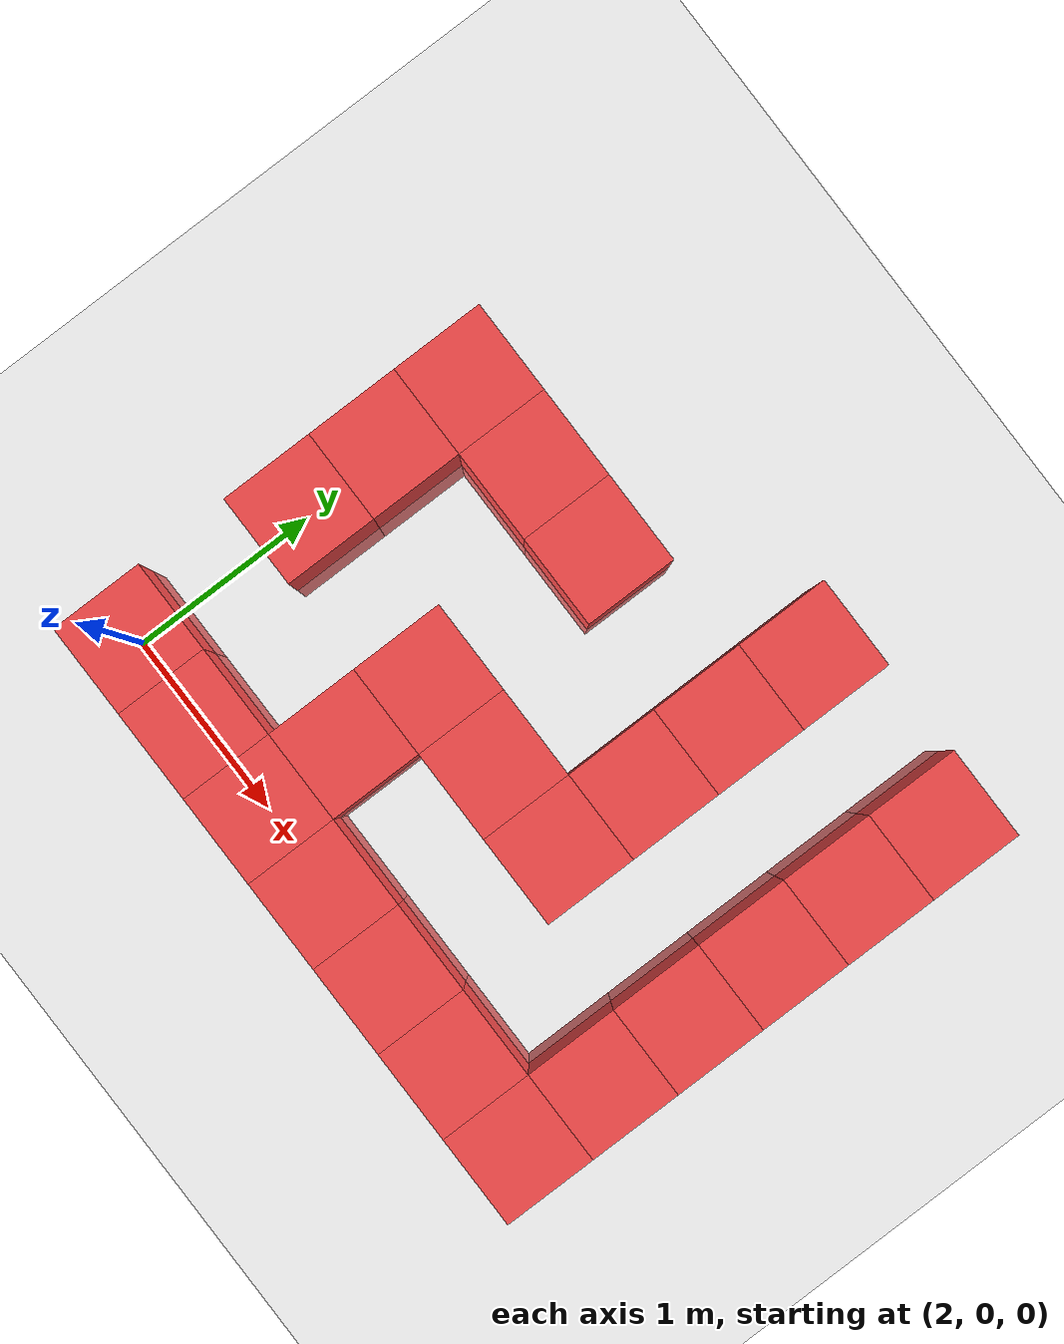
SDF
<sdf version="1.6">
 <world name="default">
  <model name="ground_plane">
   <static>1</static>
   <link name="link">
    <collision name="collision">
     <geometry><plane><normal>0 0 1</normal><size>100 100</size></plane></geometry>
     <surface><friction><ode><mu>100</mu><mu2>50</mu2></ode></friction></surface>
    </collision>
    <visual name="visual">
     <cast_shadows>0</cast_shadows>
     <geometry><plane><normal>0 0 1</normal><size>100 100</size></plane></geometry>
     <material>
      <script><uri>file://media/materials/scripts/gazebo.material</uri><name>Gazebo/Grey</name></script>
     </material>
    </visual>
   </link>
  </model>
  <model name="Box_Red_44">
   <link name="link_0">
    <inertial>
     <mass>1</mass>
     <inertia>
      <ixx>0.166667</ixx>
      <ixy>0</ixy>
      <ixz>0</ixz>
      <iyy>0.166667</iyy>
      <iyz>0</iyz>
      <izz>0.166667</izz>
     </inertia>
    </inertial>
    <visual name="visual">
     <geometry><box><size>0.5 0.5 0.5</size></box></geometry>
     <material>
      <lighting>1</lighting>
      <script><uri>file://media/materials/scripts/gazebo.material</uri><name>Gazebo/Grey</name></script>
      <ambient>1 0.3 0.3 1</ambient>
      <diffuse>0.7 0.7 0.7 1</diffuse>
      <specular>0.01 0.01 0.01 1</specular>
      <emissive>0 0 0 1</emissive>
      <shader type="vertex"><normal_map>__default__</normal_map></shader>
     </material>
    </visual>
    <collision name="collision">
     <geometry><box><size>0.5 0.5 0.5</size></box></geometry>
     <surface>
      <friction>
       <ode><mu>1</mu><mu2>1</mu2><fdir1>0 0 0</fdir1><slip1>0</slip1><slip2>0</slip2></ode>
       <torsional>
        <coefficient>1</coefficient>
        <patch_radius>0</patch_radius>
        <surface_radius>0</surface_radius>
        <use_patch_radius>1</use_patch_radius>
        <ode><slip>0</slip></ode>
       </torsional>
      </friction>
      <bounce><restitution_coefficient>0</restitution_coefficient><threshold>1e+06</threshold></bounce>
      <contact>
       <collide_without_contact>0</collide_without_contact>
       <collide_without_contact_bitmask>1</collide_without_contact_bitmask>
       <collide_bitmask>1</collide_bitmask>
       <ode>
        <soft_cfm>0</soft_cfm>
        <soft_erp>0.2</soft_erp>
        <kp>1e+13</kp>
        <kd>1</kd>
        <max_vel>0.01</max_vel>
        <min_depth>0</min_depth>
       </ode>
       <bullet>
        <split_impulse>1</split_impulse>
        <split_impulse_penetration_threshold>-0.01</split_impulse_penetration_threshold>
        <soft_cfm>0</soft_cfm>
        <soft_erp>0.2</soft_erp>
        <kp>1e+13</kp>
        <kd>1</kd>
       </bullet>
      </contact>
     </surface>
    </collision>
   </link>
   <static>0</static>
   <pose>2.000 0.000 0.000 0 0 0</pose>
  </model>
  <model name="Box_Red_46">
   <link name="link_0">
    <inertial>
     <mass>1</mass>
     <inertia>
      <ixx>0.166667</ixx>
      <ixy>0</ixy>
      <ixz>0</ixz>
      <iyy>0.166667</iyy>
      <iyz>0</iyz>
      <izz>0.166667</izz>
     </inertia>
    </inertial>
    <visual name="visual">
     <geometry><box><size>0.5 0.5 0.5</size></box></geometry>
     <material>
      <lighting>1</lighting>
      <script><uri>file://media/materials/scripts/gazebo.material</uri><name>Gazebo/Grey</name></script>
      <ambient>1 0.3 0.3 1</ambient>
      <diffuse>0.7 0.7 0.7 1</diffuse>
      <specular>0.01 0.01 0.01 1</specular>
      <emissive>0 0 0 1</emissive>
      <shader type="vertex"><normal_map>__default__</normal_map></shader>
     </material>
    </visual>
    <collision name="collision">
     <geometry><box><size>0.5 0.5 0.5</size></box></geometry>
     <surface>
      <friction>
       <ode><mu>1</mu><mu2>1</mu2><fdir1>0 0 0</fdir1><slip1>0</slip1><slip2>0</slip2></ode>
       <torsional>
        <coefficient>1</coefficient>
        <patch_radius>0</patch_radius>
        <surface_radius>0</surface_radius>
        <use_patch_radius>1</use_patch_radius>
        <ode><slip>0</slip></ode>
       </torsional>
      </friction>
      <bounce><restitution_coefficient>0</restitution_coefficient><threshold>1e+06</threshold></bounce>
      <contact>
       <collide_without_contact>0</collide_without_contact>
       <collide_without_contact_bitmask>1</collide_without_contact_bitmask>
       <collide_bitmask>1</collide_bitmask>
       <ode>
        <soft_cfm>0</soft_cfm>
        <soft_erp>0.2</soft_erp>
        <kp>1e+13</kp>
        <kd>1</kd>
        <max_vel>0.01</max_vel>
        <min_depth>0</min_depth>
       </ode>
       <bullet>
        <split_impulse>1</split_impulse>
        <split_impulse_penetration_threshold>-0.01</split_impulse_penetration_threshold>
        <soft_cfm>0</soft_cfm>
        <soft_erp>0.2</soft_erp>
        <kp>1e+13</kp>
        <kd>1</kd>
       </bullet>
      </contact>
     </surface>
    </collision>
   </link>
   <static>0</static>
   <pose>2.000 1.000 0.000 0 0 0</pose>
  </model>
  <model name="Box_Red_47">
   <link name="link_0">
    <inertial>
     <mass>1</mass>
     <inertia>
      <ixx>0.166667</ixx>
      <ixy>0</ixy>
      <ixz>0</ixz>
      <iyy>0.166667</iyy>
      <iyz>0</iyz>
      <izz>0.166667</izz>
     </inertia>
    </inertial>
    <visual name="visual">
     <geometry><box><size>0.5 0.5 0.5</size></box></geometry>
     <material>
      <lighting>1</lighting>
      <script><uri>file://media/materials/scripts/gazebo.material</uri><name>Gazebo/Grey</name></script>
      <ambient>1 0.3 0.3 1</ambient>
      <diffuse>0.7 0.7 0.7 1</diffuse>
      <specular>0.01 0.01 0.01 1</specular>
      <emissive>0 0 0 1</emissive>
      <shader type="vertex"><normal_map>__default__</normal_map></shader>
     </material>
    </visual>
    <collision name="collision">
     <geometry><box><size>0.5 0.5 0.5</size></box></geometry>
     <surface>
      <friction>
       <ode><mu>1</mu><mu2>1</mu2><fdir1>0 0 0</fdir1><slip1>0</slip1><slip2>0</slip2></ode>
       <torsional>
        <coefficient>1</coefficient>
        <patch_radius>0</patch_radius>
        <surface_radius>0</surface_radius>
        <use_patch_radius>1</use_patch_radius>
        <ode><slip>0</slip></ode>
       </torsional>
      </friction>
      <bounce><restitution_coefficient>0</restitution_coefficient><threshold>1e+06</threshold></bounce>
      <contact>
       <collide_without_contact>0</collide_without_contact>
       <collide_without_contact_bitmask>1</collide_without_contact_bitmask>
       <collide_bitmask>1</collide_bitmask>
       <ode>
        <soft_cfm>0</soft_cfm>
        <soft_erp>0.2</soft_erp>
        <kp>1e+13</kp>
        <kd>1</kd>
        <max_vel>0.01</max_vel>
        <min_depth>0</min_depth>
       </ode>
       <bullet>
        <split_impulse>1</split_impulse>
        <split_impulse_penetration_threshold>-0.01</split_impulse_penetration_threshold>
        <soft_cfm>0</soft_cfm>
        <soft_erp>0.2</soft_erp>
        <kp>1e+13</kp>
        <kd>1</kd>
       </bullet>
      </contact>
     </surface>
    </collision>
   </link>
   <static>0</static>
   <pose>2.000 1.500 0.000 0 0 0</pose>
  </model>
  <model name="Box_Red_48">
   <link name="link_0">
    <inertial>
     <mass>1</mass>
     <inertia>
      <ixx>0.166667</ixx>
      <ixy>0</ixy>
      <ixz>0</ixz>
      <iyy>0.166667</iyy>
      <iyz>0</iyz>
      <izz>0.166667</izz>
     </inertia>
    </inertial>
    <visual name="visual">
     <geometry><box><size>0.5 0.5 0.5</size></box></geometry>
     <material>
      <lighting>1</lighting>
      <script><uri>file://media/materials/scripts/gazebo.material</uri><name>Gazebo/Grey</name></script>
      <ambient>1 0.3 0.3 1</ambient>
      <diffuse>0.7 0.7 0.7 1</diffuse>
      <specular>0.01 0.01 0.01 1</specular>
      <emissive>0 0 0 1</emissive>
      <shader type="vertex"><normal_map>__default__</normal_map></shader>
     </material>
    </visual>
    <collision name="collision">
     <geometry><box><size>0.5 0.5 0.5</size></box></geometry>
     <surface>
      <friction>
       <ode><mu>1</mu><mu2>1</mu2><fdir1>0 0 0</fdir1><slip1>0</slip1><slip2>0</slip2></ode>
       <torsional>
        <coefficient>1</coefficient>
        <patch_radius>0</patch_radius>
        <surface_radius>0</surface_radius>
        <use_patch_radius>1</use_patch_radius>
        <ode><slip>0</slip></ode>
       </torsional>
      </friction>
      <bounce><restitution_coefficient>0</restitution_coefficient><threshold>1e+06</threshold></bounce>
      <contact>
       <collide_without_contact>0</collide_without_contact>
       <collide_without_contact_bitmask>1</collide_without_contact_bitmask>
       <collide_bitmask>1</collide_bitmask>
       <ode>
        <soft_cfm>0</soft_cfm>
        <soft_erp>0.2</soft_erp>
        <kp>1e+13</kp>
        <kd>1</kd>
        <max_vel>0.01</max_vel>
        <min_depth>0</min_depth>
       </ode>
       <bullet>
        <split_impulse>1</split_impulse>
        <split_impulse_penetration_threshold>-0.01</split_impulse_penetration_threshold>
        <soft_cfm>0</soft_cfm>
        <soft_erp>0.2</soft_erp>
        <kp>1e+13</kp>
        <kd>1</kd>
       </bullet>
      </contact>
     </surface>
    </collision>
   </link>
   <static>0</static>
   <pose>2.000 2.000 0.000 0 0 0</pose>
  </model>
  <model name="Box_Red_55">
   <link name="link_0">
    <inertial>
     <mass>1</mass>
     <inertia>
      <ixx>0.166667</ixx>
      <ixy>0</ixy>
      <ixz>0</ixz>
      <iyy>0.166667</iyy>
      <iyz>0</iyz>
      <izz>0.166667</izz>
     </inertia>
    </inertial>
    <visual name="visual">
     <geometry><box><size>0.5 0.5 0.5</size></box></geometry>
     <material>
      <lighting>1</lighting>
      <script><uri>file://media/materials/scripts/gazebo.material</uri><name>Gazebo/Grey</name></script>
      <ambient>1 0.3 0.3 1</ambient>
      <diffuse>0.7 0.7 0.7 1</diffuse>
      <specular>0.01 0.01 0.01 1</specular>
      <emissive>0 0 0 1</emissive>
      <shader type="vertex"><normal_map>__default__</normal_map></shader>
     </material>
    </visual>
    <collision name="collision">
     <geometry><box><size>0.5 0.5 0.5</size></box></geometry>
     <surface>
      <friction>
       <ode><mu>1</mu><mu2>1</mu2><fdir1>0 0 0</fdir1><slip1>0</slip1><slip2>0</slip2></ode>
       <torsional>
        <coefficient>1</coefficient>
        <patch_radius>0</patch_radius>
        <surface_radius>0</surface_radius>
        <use_patch_radius>1</use_patch_radius>
        <ode><slip>0</slip></ode>
       </torsional>
      </friction>
      <bounce><restitution_coefficient>0</restitution_coefficient><threshold>1e+06</threshold></bounce>
      <contact>
       <collide_without_contact>0</collide_without_contact>
       <collide_without_contact_bitmask>1</collide_without_contact_bitmask>
       <collide_bitmask>1</collide_bitmask>
       <ode>
        <soft_cfm>0</soft_cfm>
        <soft_erp>0.2</soft_erp>
        <kp>1e+13</kp>
        <kd>1</kd>
        <max_vel>0.01</max_vel>
        <min_depth>0</min_depth>
       </ode>
       <bullet>
        <split_impulse>1</split_impulse>
        <split_impulse_penetration_threshold>-0.01</split_impulse_penetration_threshold>
        <soft_cfm>0</soft_cfm>
        <soft_erp>0.2</soft_erp>
        <kp>1e+13</kp>
        <kd>1</kd>
       </bullet>
      </contact>
     </surface>
    </collision>
   </link>
   <static>0</static>
   <pose>2.500 0.000 0.000 0 0 0</pose>
  </model>
  <model name="Box_Red_59">
   <link name="link_0">
    <inertial>
     <mass>1</mass>
     <inertia>
      <ixx>0.166667</ixx>
      <ixy>0</ixy>
      <ixz>0</ixz>
      <iyy>0.166667</iyy>
      <iyz>0</iyz>
      <izz>0.166667</izz>
     </inertia>
    </inertial>
    <visual name="visual">
     <geometry><box><size>0.5 0.5 0.5</size></box></geometry>
     <material>
      <lighting>1</lighting>
      <script><uri>file://media/materials/scripts/gazebo.material</uri><name>Gazebo/Grey</name></script>
      <ambient>1 0.3 0.3 1</ambient>
      <diffuse>0.7 0.7 0.7 1</diffuse>
      <specular>0.01 0.01 0.01 1</specular>
      <emissive>0 0 0 1</emissive>
      <shader type="vertex"><normal_map>__default__</normal_map></shader>
     </material>
    </visual>
    <collision name="collision">
     <geometry><box><size>0.5 0.5 0.5</size></box></geometry>
     <surface>
      <friction>
       <ode><mu>1</mu><mu2>1</mu2><fdir1>0 0 0</fdir1><slip1>0</slip1><slip2>0</slip2></ode>
       <torsional>
        <coefficient>1</coefficient>
        <patch_radius>0</patch_radius>
        <surface_radius>0</surface_radius>
        <use_patch_radius>1</use_patch_radius>
        <ode><slip>0</slip></ode>
       </torsional>
      </friction>
      <bounce><restitution_coefficient>0</restitution_coefficient><threshold>1e+06</threshold></bounce>
      <contact>
       <collide_without_contact>0</collide_without_contact>
       <collide_without_contact_bitmask>1</collide_without_contact_bitmask>
       <collide_bitmask>1</collide_bitmask>
       <ode>
        <soft_cfm>0</soft_cfm>
        <soft_erp>0.2</soft_erp>
        <kp>1e+13</kp>
        <kd>1</kd>
        <max_vel>0.01</max_vel>
        <min_depth>0</min_depth>
       </ode>
       <bullet>
        <split_impulse>1</split_impulse>
        <split_impulse_penetration_threshold>-0.01</split_impulse_penetration_threshold>
        <soft_cfm>0</soft_cfm>
        <soft_erp>0.2</soft_erp>
        <kp>1e+13</kp>
        <kd>1</kd>
       </bullet>
      </contact>
     </surface>
    </collision>
   </link>
   <static>0</static>
   <pose>2.500 2.000 0.000 0 0 0</pose>
  </model>
  <model name="Box_Red_66">
   <link name="link_0">
    <inertial>
     <mass>1</mass>
     <inertia>
      <ixx>0.166667</ixx>
      <ixy>0</ixy>
      <ixz>0</ixz>
      <iyy>0.166667</iyy>
      <iyz>0</iyz>
      <izz>0.166667</izz>
     </inertia>
    </inertial>
    <visual name="visual">
     <geometry><box><size>0.5 0.5 0.5</size></box></geometry>
     <material>
      <lighting>1</lighting>
      <script><uri>file://media/materials/scripts/gazebo.material</uri><name>Gazebo/Grey</name></script>
      <ambient>1 0.3 0.3 1</ambient>
      <diffuse>0.7 0.7 0.7 1</diffuse>
      <specular>0.01 0.01 0.01 1</specular>
      <emissive>0 0 0 1</emissive>
      <shader type="vertex"><normal_map>__default__</normal_map></shader>
     </material>
    </visual>
    <collision name="collision">
     <geometry><box><size>0.5 0.5 0.5</size></box></geometry>
     <surface>
      <friction>
       <ode><mu>1</mu><mu2>1</mu2><fdir1>0 0 0</fdir1><slip1>0</slip1><slip2>0</slip2></ode>
       <torsional>
        <coefficient>1</coefficient>
        <patch_radius>0</patch_radius>
        <surface_radius>0</surface_radius>
        <use_patch_radius>1</use_patch_radius>
        <ode><slip>0</slip></ode>
       </torsional>
      </friction>
      <bounce><restitution_coefficient>0</restitution_coefficient><threshold>1e+06</threshold></bounce>
      <contact>
       <collide_without_contact>0</collide_without_contact>
       <collide_without_contact_bitmask>1</collide_without_contact_bitmask>
       <collide_bitmask>1</collide_bitmask>
       <ode>
        <soft_cfm>0</soft_cfm>
        <soft_erp>0.2</soft_erp>
        <kp>1e+13</kp>
        <kd>1</kd>
        <max_vel>0.01</max_vel>
        <min_depth>0</min_depth>
       </ode>
       <bullet>
        <split_impulse>1</split_impulse>
        <split_impulse_penetration_threshold>-0.01</split_impulse_penetration_threshold>
        <soft_cfm>0</soft_cfm>
        <soft_erp>0.2</soft_erp>
        <kp>1e+13</kp>
        <kd>1</kd>
       </bullet>
      </contact>
     </surface>
    </collision>
   </link>
   <static>0</static>
   <pose>3.000 0.000 0.000 0 0 0</pose>
  </model>
  <model name="Box_Red_67">
   <link name="link_0">
    <inertial>
     <mass>1</mass>
     <inertia>
      <ixx>0.166667</ixx>
      <ixy>0</ixy>
      <ixz>0</ixz>
      <iyy>0.166667</iyy>
      <iyz>0</iyz>
      <izz>0.166667</izz>
     </inertia>
    </inertial>
    <visual name="visual">
     <geometry><box><size>0.5 0.5 0.5</size></box></geometry>
     <material>
      <lighting>1</lighting>
      <script><uri>file://media/materials/scripts/gazebo.material</uri><name>Gazebo/Grey</name></script>
      <ambient>1 0.3 0.3 1</ambient>
      <diffuse>0.7 0.7 0.7 1</diffuse>
      <specular>0.01 0.01 0.01 1</specular>
      <emissive>0 0 0 1</emissive>
      <shader type="vertex"><normal_map>__default__</normal_map></shader>
     </material>
    </visual>
    <collision name="collision">
     <geometry><box><size>0.5 0.5 0.5</size></box></geometry>
     <surface>
      <friction>
       <ode><mu>1</mu><mu2>1</mu2><fdir1>0 0 0</fdir1><slip1>0</slip1><slip2>0</slip2></ode>
       <torsional>
        <coefficient>1</coefficient>
        <patch_radius>0</patch_radius>
        <surface_radius>0</surface_radius>
        <use_patch_radius>1</use_patch_radius>
        <ode><slip>0</slip></ode>
       </torsional>
      </friction>
      <bounce><restitution_coefficient>0</restitution_coefficient><threshold>1e+06</threshold></bounce>
      <contact>
       <collide_without_contact>0</collide_without_contact>
       <collide_without_contact_bitmask>1</collide_without_contact_bitmask>
       <collide_bitmask>1</collide_bitmask>
       <ode>
        <soft_cfm>0</soft_cfm>
        <soft_erp>0.2</soft_erp>
        <kp>1e+13</kp>
        <kd>1</kd>
        <max_vel>0.01</max_vel>
        <min_depth>0</min_depth>
       </ode>
       <bullet>
        <split_impulse>1</split_impulse>
        <split_impulse_penetration_threshold>-0.01</split_impulse_penetration_threshold>
        <soft_cfm>0</soft_cfm>
        <soft_erp>0.2</soft_erp>
        <kp>1e+13</kp>
        <kd>1</kd>
       </bullet>
      </contact>
     </surface>
    </collision>
   </link>
   <static>0</static>
   <pose>3.000 0.500 0.000 0 0 0</pose>
  </model>
  <model name="Box_Red_68">
   <link name="link_0">
    <inertial>
     <mass>1</mass>
     <inertia>
      <ixx>0.166667</ixx>
      <ixy>0</ixy>
      <ixz>0</ixz>
      <iyy>0.166667</iyy>
      <iyz>0</iyz>
      <izz>0.166667</izz>
     </inertia>
    </inertial>
    <visual name="visual">
     <geometry><box><size>0.5 0.5 0.5</size></box></geometry>
     <material>
      <lighting>1</lighting>
      <script><uri>file://media/materials/scripts/gazebo.material</uri><name>Gazebo/Grey</name></script>
      <ambient>1 0.3 0.3 1</ambient>
      <diffuse>0.7 0.7 0.7 1</diffuse>
      <specular>0.01 0.01 0.01 1</specular>
      <emissive>0 0 0 1</emissive>
      <shader type="vertex"><normal_map>__default__</normal_map></shader>
     </material>
    </visual>
    <collision name="collision">
     <geometry><box><size>0.5 0.5 0.5</size></box></geometry>
     <surface>
      <friction>
       <ode><mu>1</mu><mu2>1</mu2><fdir1>0 0 0</fdir1><slip1>0</slip1><slip2>0</slip2></ode>
       <torsional>
        <coefficient>1</coefficient>
        <patch_radius>0</patch_radius>
        <surface_radius>0</surface_radius>
        <use_patch_radius>1</use_patch_radius>
        <ode><slip>0</slip></ode>
       </torsional>
      </friction>
      <bounce><restitution_coefficient>0</restitution_coefficient><threshold>1e+06</threshold></bounce>
      <contact>
       <collide_without_contact>0</collide_without_contact>
       <collide_without_contact_bitmask>1</collide_without_contact_bitmask>
       <collide_bitmask>1</collide_bitmask>
       <ode>
        <soft_cfm>0</soft_cfm>
        <soft_erp>0.2</soft_erp>
        <kp>1e+13</kp>
        <kd>1</kd>
        <max_vel>0.01</max_vel>
        <min_depth>0</min_depth>
       </ode>
       <bullet>
        <split_impulse>1</split_impulse>
        <split_impulse_penetration_threshold>-0.01</split_impulse_penetration_threshold>
        <soft_cfm>0</soft_cfm>
        <soft_erp>0.2</soft_erp>
        <kp>1e+13</kp>
        <kd>1</kd>
       </bullet>
      </contact>
     </surface>
    </collision>
   </link>
   <static>0</static>
   <pose>3.000 1.000 0.000 0 0 0</pose>
  </model>
  <model name="Box_Red_70">
   <link name="link_0">
    <inertial>
     <mass>1</mass>
     <inertia>
      <ixx>0.166667</ixx>
      <ixy>0</ixy>
      <ixz>0</ixz>
      <iyy>0.166667</iyy>
      <iyz>0</iyz>
      <izz>0.166667</izz>
     </inertia>
    </inertial>
    <visual name="visual">
     <geometry><box><size>0.5 0.5 0.5</size></box></geometry>
     <material>
      <lighting>1</lighting>
      <script><uri>file://media/materials/scripts/gazebo.material</uri><name>Gazebo/Grey</name></script>
      <ambient>1 0.3 0.3 1</ambient>
      <diffuse>0.7 0.7 0.7 1</diffuse>
      <specular>0.01 0.01 0.01 1</specular>
      <emissive>0 0 0 1</emissive>
      <shader type="vertex"><normal_map>__default__</normal_map></shader>
     </material>
    </visual>
    <collision name="collision">
     <geometry><box><size>0.5 0.5 0.5</size></box></geometry>
     <surface>
      <friction>
       <ode><mu>1</mu><mu2>1</mu2><fdir1>0 0 0</fdir1><slip1>0</slip1><slip2>0</slip2></ode>
       <torsional>
        <coefficient>1</coefficient>
        <patch_radius>0</patch_radius>
        <surface_radius>0</surface_radius>
        <use_patch_radius>1</use_patch_radius>
        <ode><slip>0</slip></ode>
       </torsional>
      </friction>
      <bounce><restitution_coefficient>0</restitution_coefficient><threshold>1e+06</threshold></bounce>
      <contact>
       <collide_without_contact>0</collide_without_contact>
       <collide_without_contact_bitmask>1</collide_without_contact_bitmask>
       <collide_bitmask>1</collide_bitmask>
       <ode>
        <soft_cfm>0</soft_cfm>
        <soft_erp>0.2</soft_erp>
        <kp>1e+13</kp>
        <kd>1</kd>
        <max_vel>0.01</max_vel>
        <min_depth>0</min_depth>
       </ode>
       <bullet>
        <split_impulse>1</split_impulse>
        <split_impulse_penetration_threshold>-0.01</split_impulse_penetration_threshold>
        <soft_cfm>0</soft_cfm>
        <soft_erp>0.2</soft_erp>
        <kp>1e+13</kp>
        <kd>1</kd>
       </bullet>
      </contact>
     </surface>
    </collision>
   </link>
   <static>0</static>
   <pose>3.000 2.000 0.000 0 0 0</pose>
  </model>
  <model name="Box_Red_77">
   <link name="link_0">
    <inertial>
     <mass>1</mass>
     <inertia>
      <ixx>0.166667</ixx>
      <ixy>0</ixy>
      <ixz>0</ixz>
      <iyy>0.166667</iyy>
      <iyz>0</iyz>
      <izz>0.166667</izz>
     </inertia>
    </inertial>
    <visual name="visual">
     <geometry><box><size>0.5 0.5 0.5</size></box></geometry>
     <material>
      <lighting>1</lighting>
      <script><uri>file://media/materials/scripts/gazebo.material</uri><name>Gazebo/Grey</name></script>
      <ambient>1 0.3 0.3 1</ambient>
      <diffuse>0.7 0.7 0.7 1</diffuse>
      <specular>0.01 0.01 0.01 1</specular>
      <emissive>0 0 0 1</emissive>
      <shader type="vertex"><normal_map>__default__</normal_map></shader>
     </material>
    </visual>
    <collision name="collision">
     <geometry><box><size>0.5 0.5 0.5</size></box></geometry>
     <surface>
      <friction>
       <ode><mu>1</mu><mu2>1</mu2><fdir1>0 0 0</fdir1><slip1>0</slip1><slip2>0</slip2></ode>
       <torsional>
        <coefficient>1</coefficient>
        <patch_radius>0</patch_radius>
        <surface_radius>0</surface_radius>
        <use_patch_radius>1</use_patch_radius>
        <ode><slip>0</slip></ode>
       </torsional>
      </friction>
      <bounce><restitution_coefficient>0</restitution_coefficient><threshold>1e+06</threshold></bounce>
      <contact>
       <collide_without_contact>0</collide_without_contact>
       <collide_without_contact_bitmask>1</collide_without_contact_bitmask>
       <collide_bitmask>1</collide_bitmask>
       <ode>
        <soft_cfm>0</soft_cfm>
        <soft_erp>0.2</soft_erp>
        <kp>1e+13</kp>
        <kd>1</kd>
        <max_vel>0.01</max_vel>
        <min_depth>0</min_depth>
       </ode>
       <bullet>
        <split_impulse>1</split_impulse>
        <split_impulse_penetration_threshold>-0.01</split_impulse_penetration_threshold>
        <soft_cfm>0</soft_cfm>
        <soft_erp>0.2</soft_erp>
        <kp>1e+13</kp>
        <kd>1</kd>
       </bullet>
      </contact>
     </surface>
    </collision>
   </link>
   <static>0</static>
   <pose>3.500 0.000 0.000 0 0 0</pose>
  </model>
  <model name="Box_Red_79">
   <link name="link_0">
    <inertial>
     <mass>1</mass>
     <inertia>
      <ixx>0.166667</ixx>
      <ixy>0</ixy>
      <ixz>0</ixz>
      <iyy>0.166667</iyy>
      <iyz>0</iyz>
      <izz>0.166667</izz>
     </inertia>
    </inertial>
    <visual name="visual">
     <geometry><box><size>0.5 0.5 0.5</size></box></geometry>
     <material>
      <lighting>1</lighting>
      <script><uri>file://media/materials/scripts/gazebo.material</uri><name>Gazebo/Grey</name></script>
      <ambient>1 0.3 0.3 1</ambient>
      <diffuse>0.7 0.7 0.7 1</diffuse>
      <specular>0.01 0.01 0.01 1</specular>
      <emissive>0 0 0 1</emissive>
      <shader type="vertex"><normal_map>__default__</normal_map></shader>
     </material>
    </visual>
    <collision name="collision">
     <geometry><box><size>0.5 0.5 0.5</size></box></geometry>
     <surface>
      <friction>
       <ode><mu>1</mu><mu2>1</mu2><fdir1>0 0 0</fdir1><slip1>0</slip1><slip2>0</slip2></ode>
       <torsional>
        <coefficient>1</coefficient>
        <patch_radius>0</patch_radius>
        <surface_radius>0</surface_radius>
        <use_patch_radius>1</use_patch_radius>
        <ode><slip>0</slip></ode>
       </torsional>
      </friction>
      <bounce><restitution_coefficient>0</restitution_coefficient><threshold>1e+06</threshold></bounce>
      <contact>
       <collide_without_contact>0</collide_without_contact>
       <collide_without_contact_bitmask>1</collide_without_contact_bitmask>
       <collide_bitmask>1</collide_bitmask>
       <ode>
        <soft_cfm>0</soft_cfm>
        <soft_erp>0.2</soft_erp>
        <kp>1e+13</kp>
        <kd>1</kd>
        <max_vel>0.01</max_vel>
        <min_depth>0</min_depth>
       </ode>
       <bullet>
        <split_impulse>1</split_impulse>
        <split_impulse_penetration_threshold>-0.01</split_impulse_penetration_threshold>
        <soft_cfm>0</soft_cfm>
        <soft_erp>0.2</soft_erp>
        <kp>1e+13</kp>
        <kd>1</kd>
       </bullet>
      </contact>
     </surface>
    </collision>
   </link>
   <static>0</static>
   <pose>3.500 1.000 0.000 0 0 0</pose>
  </model>
  <model name="Box_Red_88">
   <link name="link_0">
    <inertial>
     <mass>1</mass>
     <inertia>
      <ixx>0.166667</ixx>
      <ixy>0</ixy>
      <ixz>0</ixz>
      <iyy>0.166667</iyy>
      <iyz>0</iyz>
      <izz>0.166667</izz>
     </inertia>
    </inertial>
    <visual name="visual">
     <geometry><box><size>0.5 0.5 0.5</size></box></geometry>
     <material>
      <lighting>1</lighting>
      <script><uri>file://media/materials/scripts/gazebo.material</uri><name>Gazebo/Grey</name></script>
      <ambient>1 0.3 0.3 1</ambient>
      <diffuse>0.7 0.7 0.7 1</diffuse>
      <specular>0.01 0.01 0.01 1</specular>
      <emissive>0 0 0 1</emissive>
      <shader type="vertex"><normal_map>__default__</normal_map></shader>
     </material>
    </visual>
    <collision name="collision">
     <geometry><box><size>0.5 0.5 0.5</size></box></geometry>
     <surface>
      <friction>
       <ode><mu>1</mu><mu2>1</mu2><fdir1>0 0 0</fdir1><slip1>0</slip1><slip2>0</slip2></ode>
       <torsional>
        <coefficient>1</coefficient>
        <patch_radius>0</patch_radius>
        <surface_radius>0</surface_radius>
        <use_patch_radius>1</use_patch_radius>
        <ode><slip>0</slip></ode>
       </torsional>
      </friction>
      <bounce><restitution_coefficient>0</restitution_coefficient><threshold>1e+06</threshold></bounce>
      <contact>
       <collide_without_contact>0</collide_without_contact>
       <collide_without_contact_bitmask>1</collide_without_contact_bitmask>
       <collide_bitmask>1</collide_bitmask>
       <ode>
        <soft_cfm>0</soft_cfm>
        <soft_erp>0.2</soft_erp>
        <kp>1e+13</kp>
        <kd>1</kd>
        <max_vel>0.01</max_vel>
        <min_depth>0</min_depth>
       </ode>
       <bullet>
        <split_impulse>1</split_impulse>
        <split_impulse_penetration_threshold>-0.01</split_impulse_penetration_threshold>
        <soft_cfm>0</soft_cfm>
        <soft_erp>0.2</soft_erp>
        <kp>1e+13</kp>
        <kd>1</kd>
       </bullet>
      </contact>
     </surface>
    </collision>
   </link>
   <static>0</static>
   <pose>4.000 0.000 0.000 0 0 0</pose>
  </model>
  <model name="Box_Red_90">
   <link name="link_0">
    <inertial>
     <mass>1</mass>
     <inertia>
      <ixx>0.166667</ixx>
      <ixy>0</ixy>
      <ixz>0</ixz>
      <iyy>0.166667</iyy>
      <iyz>0</iyz>
      <izz>0.166667</izz>
     </inertia>
    </inertial>
    <visual name="visual">
     <geometry><box><size>0.5 0.5 0.5</size></box></geometry>
     <material>
      <lighting>1</lighting>
      <script><uri>file://media/materials/scripts/gazebo.material</uri><name>Gazebo/Grey</name></script>
      <ambient>1 0.3 0.3 1</ambient>
      <diffuse>0.7 0.7 0.7 1</diffuse>
      <specular>0.01 0.01 0.01 1</specular>
      <emissive>0 0 0 1</emissive>
      <shader type="vertex"><normal_map>__default__</normal_map></shader>
     </material>
    </visual>
    <collision name="collision">
     <geometry><box><size>0.5 0.5 0.5</size></box></geometry>
     <surface>
      <friction>
       <ode><mu>1</mu><mu2>1</mu2><fdir1>0 0 0</fdir1><slip1>0</slip1><slip2>0</slip2></ode>
       <torsional>
        <coefficient>1</coefficient>
        <patch_radius>0</patch_radius>
        <surface_radius>0</surface_radius>
        <use_patch_radius>1</use_patch_radius>
        <ode><slip>0</slip></ode>
       </torsional>
      </friction>
      <bounce><restitution_coefficient>0</restitution_coefficient><threshold>1e+06</threshold></bounce>
      <contact>
       <collide_without_contact>0</collide_without_contact>
       <collide_without_contact_bitmask>1</collide_without_contact_bitmask>
       <collide_bitmask>1</collide_bitmask>
       <ode>
        <soft_cfm>0</soft_cfm>
        <soft_erp>0.2</soft_erp>
        <kp>1e+13</kp>
        <kd>1</kd>
        <max_vel>0.01</max_vel>
        <min_depth>0</min_depth>
       </ode>
       <bullet>
        <split_impulse>1</split_impulse>
        <split_impulse_penetration_threshold>-0.01</split_impulse_penetration_threshold>
        <soft_cfm>0</soft_cfm>
        <soft_erp>0.2</soft_erp>
        <kp>1e+13</kp>
        <kd>1</kd>
       </bullet>
      </contact>
     </surface>
    </collision>
   </link>
   <static>0</static>
   <pose>4.000 1.000 0.000 0 0 0</pose>
  </model>
  <model name="Box_Red_91">
   <link name="link_0">
    <inertial>
     <mass>1</mass>
     <inertia>
      <ixx>0.166667</ixx>
      <ixy>0</ixy>
      <ixz>0</ixz>
      <iyy>0.166667</iyy>
      <iyz>0</iyz>
      <izz>0.166667</izz>
     </inertia>
    </inertial>
    <visual name="visual">
     <geometry><box><size>0.5 0.5 0.5</size></box></geometry>
     <material>
      <lighting>1</lighting>
      <script><uri>file://media/materials/scripts/gazebo.material</uri><name>Gazebo/Grey</name></script>
      <ambient>1 0.3 0.3 1</ambient>
      <diffuse>0.7 0.7 0.7 1</diffuse>
      <specular>0.01 0.01 0.01 1</specular>
      <emissive>0 0 0 1</emissive>
      <shader type="vertex"><normal_map>__default__</normal_map></shader>
     </material>
    </visual>
    <collision name="collision">
     <geometry><box><size>0.5 0.5 0.5</size></box></geometry>
     <surface>
      <friction>
       <ode><mu>1</mu><mu2>1</mu2><fdir1>0 0 0</fdir1><slip1>0</slip1><slip2>0</slip2></ode>
       <torsional>
        <coefficient>1</coefficient>
        <patch_radius>0</patch_radius>
        <surface_radius>0</surface_radius>
        <use_patch_radius>1</use_patch_radius>
        <ode><slip>0</slip></ode>
       </torsional>
      </friction>
      <bounce><restitution_coefficient>0</restitution_coefficient><threshold>1e+06</threshold></bounce>
      <contact>
       <collide_without_contact>0</collide_without_contact>
       <collide_without_contact_bitmask>1</collide_without_contact_bitmask>
       <collide_bitmask>1</collide_bitmask>
       <ode>
        <soft_cfm>0</soft_cfm>
        <soft_erp>0.2</soft_erp>
        <kp>1e+13</kp>
        <kd>1</kd>
        <max_vel>0.01</max_vel>
        <min_depth>0</min_depth>
       </ode>
       <bullet>
        <split_impulse>1</split_impulse>
        <split_impulse_penetration_threshold>-0.01</split_impulse_penetration_threshold>
        <soft_cfm>0</soft_cfm>
        <soft_erp>0.2</soft_erp>
        <kp>1e+13</kp>
        <kd>1</kd>
       </bullet>
      </contact>
     </surface>
    </collision>
   </link>
   <static>0</static>
   <pose>4.000 1.500 0.000 0 0 0</pose>
  </model>
  <model name="Box_Red_92">
   <link name="link_0">
    <inertial>
     <mass>1</mass>
     <inertia>
      <ixx>0.166667</ixx>
      <ixy>0</ixy>
      <ixz>0</ixz>
      <iyy>0.166667</iyy>
      <iyz>0</iyz>
      <izz>0.166667</izz>
     </inertia>
    </inertial>
    <visual name="visual">
     <geometry><box><size>0.5 0.5 0.5</size></box></geometry>
     <material>
      <lighting>1</lighting>
      <script><uri>file://media/materials/scripts/gazebo.material</uri><name>Gazebo/Grey</name></script>
      <ambient>1 0.3 0.3 1</ambient>
      <diffuse>0.7 0.7 0.7 1</diffuse>
      <specular>0.01 0.01 0.01 1</specular>
      <emissive>0 0 0 1</emissive>
      <shader type="vertex"><normal_map>__default__</normal_map></shader>
     </material>
    </visual>
    <collision name="collision">
     <geometry><box><size>0.5 0.5 0.5</size></box></geometry>
     <surface>
      <friction>
       <ode><mu>1</mu><mu2>1</mu2><fdir1>0 0 0</fdir1><slip1>0</slip1><slip2>0</slip2></ode>
       <torsional>
        <coefficient>1</coefficient>
        <patch_radius>0</patch_radius>
        <surface_radius>0</surface_radius>
        <use_patch_radius>1</use_patch_radius>
        <ode><slip>0</slip></ode>
       </torsional>
      </friction>
      <bounce><restitution_coefficient>0</restitution_coefficient><threshold>1e+06</threshold></bounce>
      <contact>
       <collide_without_contact>0</collide_without_contact>
       <collide_without_contact_bitmask>1</collide_without_contact_bitmask>
       <collide_bitmask>1</collide_bitmask>
       <ode>
        <soft_cfm>0</soft_cfm>
        <soft_erp>0.2</soft_erp>
        <kp>1e+13</kp>
        <kd>1</kd>
        <max_vel>0.01</max_vel>
        <min_depth>0</min_depth>
       </ode>
       <bullet>
        <split_impulse>1</split_impulse>
        <split_impulse_penetration_threshold>-0.01</split_impulse_penetration_threshold>
        <soft_cfm>0</soft_cfm>
        <soft_erp>0.2</soft_erp>
        <kp>1e+13</kp>
        <kd>1</kd>
       </bullet>
      </contact>
     </surface>
    </collision>
   </link>
   <static>0</static>
   <pose>4.000 2.000 0.000 0 0 0</pose>
  </model>
  <model name="Box_Red_93">
   <link name="link_0">
    <inertial>
     <mass>1</mass>
     <inertia>
      <ixx>0.166667</ixx>
      <ixy>0</ixy>
      <ixz>0</ixz>
      <iyy>0.166667</iyy>
      <iyz>0</iyz>
      <izz>0.166667</izz>
     </inertia>
    </inertial>
    <visual name="visual">
     <geometry><box><size>0.5 0.5 0.5</size></box></geometry>
     <material>
      <lighting>1</lighting>
      <script><uri>file://media/materials/scripts/gazebo.material</uri><name>Gazebo/Grey</name></script>
      <ambient>1 0.3 0.3 1</ambient>
      <diffuse>0.7 0.7 0.7 1</diffuse>
      <specular>0.01 0.01 0.01 1</specular>
      <emissive>0 0 0 1</emissive>
      <shader type="vertex"><normal_map>__default__</normal_map></shader>
     </material>
    </visual>
    <collision name="collision">
     <geometry><box><size>0.5 0.5 0.5</size></box></geometry>
     <surface>
      <friction>
       <ode><mu>1</mu><mu2>1</mu2><fdir1>0 0 0</fdir1><slip1>0</slip1><slip2>0</slip2></ode>
       <torsional>
        <coefficient>1</coefficient>
        <patch_radius>0</patch_radius>
        <surface_radius>0</surface_radius>
        <use_patch_radius>1</use_patch_radius>
        <ode><slip>0</slip></ode>
       </torsional>
      </friction>
      <bounce><restitution_coefficient>0</restitution_coefficient><threshold>1e+06</threshold></bounce>
      <contact>
       <collide_without_contact>0</collide_without_contact>
       <collide_without_contact_bitmask>1</collide_without_contact_bitmask>
       <collide_bitmask>1</collide_bitmask>
       <ode>
        <soft_cfm>0</soft_cfm>
        <soft_erp>0.2</soft_erp>
        <kp>1e+13</kp>
        <kd>1</kd>
        <max_vel>0.01</max_vel>
        <min_depth>0</min_depth>
       </ode>
       <bullet>
        <split_impulse>1</split_impulse>
        <split_impulse_penetration_threshold>-0.01</split_impulse_penetration_threshold>
        <soft_cfm>0</soft_cfm>
        <soft_erp>0.2</soft_erp>
        <kp>1e+13</kp>
        <kd>1</kd>
       </bullet>
      </contact>
     </surface>
    </collision>
   </link>
   <static>0</static>
   <pose>4.000 2.500 0.000 0 0 0</pose>
  </model>
  <model name="Box_Red_99">
   <link name="link_0">
    <inertial>
     <mass>1</mass>
     <inertia>
      <ixx>0.166667</ixx>
      <ixy>0</ixy>
      <ixz>0</ixz>
      <iyy>0.166667</iyy>
      <iyz>0</iyz>
      <izz>0.166667</izz>
     </inertia>
    </inertial>
    <visual name="visual">
     <geometry><box><size>0.5 0.5 0.5</size></box></geometry>
     <material>
      <lighting>1</lighting>
      <script><uri>file://media/materials/scripts/gazebo.material</uri><name>Gazebo/Grey</name></script>
      <ambient>1 0.3 0.3 1</ambient>
      <diffuse>0.7 0.7 0.7 1</diffuse>
      <specular>0.01 0.01 0.01 1</specular>
      <emissive>0 0 0 1</emissive>
      <shader type="vertex"><normal_map>__default__</normal_map></shader>
     </material>
    </visual>
    <collision name="collision">
     <geometry><box><size>0.5 0.5 0.5</size></box></geometry>
     <surface>
      <friction>
       <ode><mu>1</mu><mu2>1</mu2><fdir1>0 0 0</fdir1><slip1>0</slip1><slip2>0</slip2></ode>
       <torsional>
        <coefficient>1</coefficient>
        <patch_radius>0</patch_radius>
        <surface_radius>0</surface_radius>
        <use_patch_radius>1</use_patch_radius>
        <ode><slip>0</slip></ode>
       </torsional>
      </friction>
      <bounce><restitution_coefficient>0</restitution_coefficient><threshold>1e+06</threshold></bounce>
      <contact>
       <collide_without_contact>0</collide_without_contact>
       <collide_without_contact_bitmask>1</collide_without_contact_bitmask>
       <collide_bitmask>1</collide_bitmask>
       <ode>
        <soft_cfm>0</soft_cfm>
        <soft_erp>0.2</soft_erp>
        <kp>1e+13</kp>
        <kd>1</kd>
        <max_vel>0.01</max_vel>
        <min_depth>0</min_depth>
       </ode>
       <bullet>
        <split_impulse>1</split_impulse>
        <split_impulse_penetration_threshold>-0.01</split_impulse_penetration_threshold>
        <soft_cfm>0</soft_cfm>
        <soft_erp>0.2</soft_erp>
        <kp>1e+13</kp>
        <kd>1</kd>
       </bullet>
      </contact>
     </surface>
    </collision>
   </link>
   <static>0</static>
   <pose>4.500 0.000 0.000 0 0 0</pose>
  </model>
  <model name="Box_Red_110">
   <link name="link_0">
    <inertial>
     <mass>1</mass>
     <inertia>
      <ixx>0.166667</ixx>
      <ixy>0</ixy>
      <ixz>0</ixz>
      <iyy>0.166667</iyy>
      <iyz>0</iyz>
      <izz>0.166667</izz>
     </inertia>
    </inertial>
    <visual name="visual">
     <geometry><box><size>0.5 0.5 0.5</size></box></geometry>
     <material>
      <lighting>1</lighting>
      <script><uri>file://media/materials/scripts/gazebo.material</uri><name>Gazebo/Grey</name></script>
      <ambient>1 0.3 0.3 1</ambient>
      <diffuse>0.7 0.7 0.7 1</diffuse>
      <specular>0.01 0.01 0.01 1</specular>
      <emissive>0 0 0 1</emissive>
      <shader type="vertex"><normal_map>__default__</normal_map></shader>
     </material>
    </visual>
    <collision name="collision">
     <geometry><box><size>0.5 0.5 0.5</size></box></geometry>
     <surface>
      <friction>
       <ode><mu>1</mu><mu2>1</mu2><fdir1>0 0 0</fdir1><slip1>0</slip1><slip2>0</slip2></ode>
       <torsional>
        <coefficient>1</coefficient>
        <patch_radius>0</patch_radius>
        <surface_radius>0</surface_radius>
        <use_patch_radius>1</use_patch_radius>
        <ode><slip>0</slip></ode>
       </torsional>
      </friction>
      <bounce><restitution_coefficient>0</restitution_coefficient><threshold>1e+06</threshold></bounce>
      <contact>
       <collide_without_contact>0</collide_without_contact>
       <collide_without_contact_bitmask>1</collide_without_contact_bitmask>
       <collide_bitmask>1</collide_bitmask>
       <ode>
        <soft_cfm>0</soft_cfm>
        <soft_erp>0.2</soft_erp>
        <kp>1e+13</kp>
        <kd>1</kd>
        <max_vel>0.01</max_vel>
        <min_depth>0</min_depth>
       </ode>
       <bullet>
        <split_impulse>1</split_impulse>
        <split_impulse_penetration_threshold>-0.01</split_impulse_penetration_threshold>
        <soft_cfm>0</soft_cfm>
        <soft_erp>0.2</soft_erp>
        <kp>1e+13</kp>
        <kd>1</kd>
       </bullet>
      </contact>
     </surface>
    </collision>
   </link>
   <static>0</static>
   <pose>5.000 0.000 0.000 0 0 0</pose>
  </model>
  <model name="Box_Red_111">
   <link name="link_0">
    <inertial>
     <mass>1</mass>
     <inertia>
      <ixx>0.166667</ixx>
      <ixy>0</ixy>
      <ixz>0</ixz>
      <iyy>0.166667</iyy>
      <iyz>0</iyz>
      <izz>0.166667</izz>
     </inertia>
    </inertial>
    <visual name="visual">
     <geometry><box><size>0.5 0.5 0.5</size></box></geometry>
     <material>
      <lighting>1</lighting>
      <script><uri>file://media/materials/scripts/gazebo.material</uri><name>Gazebo/Grey</name></script>
      <ambient>1 0.3 0.3 1</ambient>
      <diffuse>0.7 0.7 0.7 1</diffuse>
      <specular>0.01 0.01 0.01 1</specular>
      <emissive>0 0 0 1</emissive>
      <shader type="vertex"><normal_map>__default__</normal_map></shader>
     </material>
    </visual>
    <collision name="collision">
     <geometry><box><size>0.5 0.5 0.5</size></box></geometry>
     <surface>
      <friction>
       <ode><mu>1</mu><mu2>1</mu2><fdir1>0 0 0</fdir1><slip1>0</slip1><slip2>0</slip2></ode>
       <torsional>
        <coefficient>1</coefficient>
        <patch_radius>0</patch_radius>
        <surface_radius>0</surface_radius>
        <use_patch_radius>1</use_patch_radius>
        <ode><slip>0</slip></ode>
       </torsional>
      </friction>
      <bounce><restitution_coefficient>0</restitution_coefficient><threshold>1e+06</threshold></bounce>
      <contact>
       <collide_without_contact>0</collide_without_contact>
       <collide_without_contact_bitmask>1</collide_without_contact_bitmask>
       <collide_bitmask>1</collide_bitmask>
       <ode>
        <soft_cfm>0</soft_cfm>
        <soft_erp>0.2</soft_erp>
        <kp>1e+13</kp>
        <kd>1</kd>
        <max_vel>0.01</max_vel>
        <min_depth>0</min_depth>
       </ode>
       <bullet>
        <split_impulse>1</split_impulse>
        <split_impulse_penetration_threshold>-0.01</split_impulse_penetration_threshold>
        <soft_cfm>0</soft_cfm>
        <soft_erp>0.2</soft_erp>
        <kp>1e+13</kp>
        <kd>1</kd>
       </bullet>
      </contact>
     </surface>
    </collision>
   </link>
   <static>0</static>
   <pose>5.000 0.500 0.000 0 0 0</pose>
  </model>
  <model name="Box_Red_112">
   <link name="link_0">
    <inertial>
     <mass>1</mass>
     <inertia>
      <ixx>0.166667</ixx>
      <ixy>0</ixy>
      <ixz>0</ixz>
      <iyy>0.166667</iyy>
      <iyz>0</iyz>
      <izz>0.166667</izz>
     </inertia>
    </inertial>
    <visual name="visual">
     <geometry><box><size>0.5 0.5 0.5</size></box></geometry>
     <material>
      <lighting>1</lighting>
      <script><uri>file://media/materials/scripts/gazebo.material</uri><name>Gazebo/Grey</name></script>
      <ambient>1 0.3 0.3 1</ambient>
      <diffuse>0.7 0.7 0.7 1</diffuse>
      <specular>0.01 0.01 0.01 1</specular>
      <emissive>0 0 0 1</emissive>
      <shader type="vertex"><normal_map>__default__</normal_map></shader>
     </material>
    </visual>
    <collision name="collision">
     <geometry><box><size>0.5 0.5 0.5</size></box></geometry>
     <surface>
      <friction>
       <ode><mu>1</mu><mu2>1</mu2><fdir1>0 0 0</fdir1><slip1>0</slip1><slip2>0</slip2></ode>
       <torsional>
        <coefficient>1</coefficient>
        <patch_radius>0</patch_radius>
        <surface_radius>0</surface_radius>
        <use_patch_radius>1</use_patch_radius>
        <ode><slip>0</slip></ode>
       </torsional>
      </friction>
      <bounce><restitution_coefficient>0</restitution_coefficient><threshold>1e+06</threshold></bounce>
      <contact>
       <collide_without_contact>0</collide_without_contact>
       <collide_without_contact_bitmask>1</collide_without_contact_bitmask>
       <collide_bitmask>1</collide_bitmask>
       <ode>
        <soft_cfm>0</soft_cfm>
        <soft_erp>0.2</soft_erp>
        <kp>1e+13</kp>
        <kd>1</kd>
        <max_vel>0.01</max_vel>
        <min_depth>0</min_depth>
       </ode>
       <bullet>
        <split_impulse>1</split_impulse>
        <split_impulse_penetration_threshold>-0.01</split_impulse_penetration_threshold>
        <soft_cfm>0</soft_cfm>
        <soft_erp>0.2</soft_erp>
        <kp>1e+13</kp>
        <kd>1</kd>
       </bullet>
      </contact>
     </surface>
    </collision>
   </link>
   <static>0</static>
   <pose>5.000 1.000 0.000 0 0 0</pose>
  </model>
  <model name="Box_Red_113">
   <link name="link_0">
    <inertial>
     <mass>1</mass>
     <inertia>
      <ixx>0.166667</ixx>
      <ixy>0</ixy>
      <ixz>0</ixz>
      <iyy>0.166667</iyy>
      <iyz>0</iyz>
      <izz>0.166667</izz>
     </inertia>
    </inertial>
    <visual name="visual">
     <geometry><box><size>0.5 0.5 0.5</size></box></geometry>
     <material>
      <lighting>1</lighting>
      <script><uri>file://media/materials/scripts/gazebo.material</uri><name>Gazebo/Grey</name></script>
      <ambient>1 0.3 0.3 1</ambient>
      <diffuse>0.7 0.7 0.7 1</diffuse>
      <specular>0.01 0.01 0.01 1</specular>
      <emissive>0 0 0 1</emissive>
      <shader type="vertex"><normal_map>__default__</normal_map></shader>
     </material>
    </visual>
    <collision name="collision">
     <geometry><box><size>0.5 0.5 0.5</size></box></geometry>
     <surface>
      <friction>
       <ode><mu>1</mu><mu2>1</mu2><fdir1>0 0 0</fdir1><slip1>0</slip1><slip2>0</slip2></ode>
       <torsional>
        <coefficient>1</coefficient>
        <patch_radius>0</patch_radius>
        <surface_radius>0</surface_radius>
        <use_patch_radius>1</use_patch_radius>
        <ode><slip>0</slip></ode>
       </torsional>
      </friction>
      <bounce><restitution_coefficient>0</restitution_coefficient><threshold>1e+06</threshold></bounce>
      <contact>
       <collide_without_contact>0</collide_without_contact>
       <collide_without_contact_bitmask>1</collide_without_contact_bitmask>
       <collide_bitmask>1</collide_bitmask>
       <ode>
        <soft_cfm>0</soft_cfm>
        <soft_erp>0.2</soft_erp>
        <kp>1e+13</kp>
        <kd>1</kd>
        <max_vel>0.01</max_vel>
        <min_depth>0</min_depth>
       </ode>
       <bullet>
        <split_impulse>1</split_impulse>
        <split_impulse_penetration_threshold>-0.01</split_impulse_penetration_threshold>
        <soft_cfm>0</soft_cfm>
        <soft_erp>0.2</soft_erp>
        <kp>1e+13</kp>
        <kd>1</kd>
       </bullet>
      </contact>
     </surface>
    </collision>
   </link>
   <static>0</static>
   <pose>5.000 1.500 0.000 0 0 0</pose>
  </model>
  <model name="Box_Red_114">
   <link name="link_0">
    <inertial>
     <mass>1</mass>
     <inertia>
      <ixx>0.166667</ixx>
      <ixy>0</ixy>
      <ixz>0</ixz>
      <iyy>0.166667</iyy>
      <iyz>0</iyz>
      <izz>0.166667</izz>
     </inertia>
    </inertial>
    <visual name="visual">
     <geometry><box><size>0.5 0.5 0.5</size></box></geometry>
     <material>
      <lighting>1</lighting>
      <script><uri>file://media/materials/scripts/gazebo.material</uri><name>Gazebo/Grey</name></script>
      <ambient>1 0.3 0.3 1</ambient>
      <diffuse>0.7 0.7 0.7 1</diffuse>
      <specular>0.01 0.01 0.01 1</specular>
      <emissive>0 0 0 1</emissive>
      <shader type="vertex"><normal_map>__default__</normal_map></shader>
     </material>
    </visual>
    <collision name="collision">
     <geometry><box><size>0.5 0.5 0.5</size></box></geometry>
     <surface>
      <friction>
       <ode><mu>1</mu><mu2>1</mu2><fdir1>0 0 0</fdir1><slip1>0</slip1><slip2>0</slip2></ode>
       <torsional>
        <coefficient>1</coefficient>
        <patch_radius>0</patch_radius>
        <surface_radius>0</surface_radius>
        <use_patch_radius>1</use_patch_radius>
        <ode><slip>0</slip></ode>
       </torsional>
      </friction>
      <bounce><restitution_coefficient>0</restitution_coefficient><threshold>1e+06</threshold></bounce>
      <contact>
       <collide_without_contact>0</collide_without_contact>
       <collide_without_contact_bitmask>1</collide_without_contact_bitmask>
       <collide_bitmask>1</collide_bitmask>
       <ode>
        <soft_cfm>0</soft_cfm>
        <soft_erp>0.2</soft_erp>
        <kp>1e+13</kp>
        <kd>1</kd>
        <max_vel>0.01</max_vel>
        <min_depth>0</min_depth>
       </ode>
       <bullet>
        <split_impulse>1</split_impulse>
        <split_impulse_penetration_threshold>-0.01</split_impulse_penetration_threshold>
        <soft_cfm>0</soft_cfm>
        <soft_erp>0.2</soft_erp>
        <kp>1e+13</kp>
        <kd>1</kd>
       </bullet>
      </contact>
     </surface>
    </collision>
   </link>
   <static>0</static>
   <pose>5.000 2.000 0.000 0 0 0</pose>
  </model>
  <model name="Box_Red_115">
   <link name="link_0">
    <inertial>
     <mass>1</mass>
     <inertia>
      <ixx>0.166667</ixx>
      <ixy>0</ixy>
      <ixz>0</ixz>
      <iyy>0.166667</iyy>
      <iyz>0</iyz>
      <izz>0.166667</izz>
     </inertia>
    </inertial>
    <visual name="visual">
     <geometry><box><size>0.5 0.5 0.5</size></box></geometry>
     <material>
      <lighting>1</lighting>
      <script><uri>file://media/materials/scripts/gazebo.material</uri><name>Gazebo/Grey</name></script>
      <ambient>1 0.3 0.3 1</ambient>
      <diffuse>0.7 0.7 0.7 1</diffuse>
      <specular>0.01 0.01 0.01 1</specular>
      <emissive>0 0 0 1</emissive>
      <shader type="vertex"><normal_map>__default__</normal_map></shader>
     </material>
    </visual>
    <collision name="collision">
     <geometry><box><size>0.5 0.5 0.5</size></box></geometry>
     <surface>
      <friction>
       <ode><mu>1</mu><mu2>1</mu2><fdir1>0 0 0</fdir1><slip1>0</slip1><slip2>0</slip2></ode>
       <torsional>
        <coefficient>1</coefficient>
        <patch_radius>0</patch_radius>
        <surface_radius>0</surface_radius>
        <use_patch_radius>1</use_patch_radius>
        <ode><slip>0</slip></ode>
       </torsional>
      </friction>
      <bounce><restitution_coefficient>0</restitution_coefficient><threshold>1e+06</threshold></bounce>
      <contact>
       <collide_without_contact>0</collide_without_contact>
       <collide_without_contact_bitmask>1</collide_without_contact_bitmask>
       <collide_bitmask>1</collide_bitmask>
       <ode>
        <soft_cfm>0</soft_cfm>
        <soft_erp>0.2</soft_erp>
        <kp>1e+13</kp>
        <kd>1</kd>
        <max_vel>0.01</max_vel>
        <min_depth>0</min_depth>
       </ode>
       <bullet>
        <split_impulse>1</split_impulse>
        <split_impulse_penetration_threshold>-0.01</split_impulse_penetration_threshold>
        <soft_cfm>0</soft_cfm>
        <soft_erp>0.2</soft_erp>
        <kp>1e+13</kp>
        <kd>1</kd>
       </bullet>
      </contact>
     </surface>
    </collision>
   </link>
   <static>0</static>
   <pose>5.000 2.500 0.000 0 0 0</pose>
  </model>
 </world>
</sdf>
